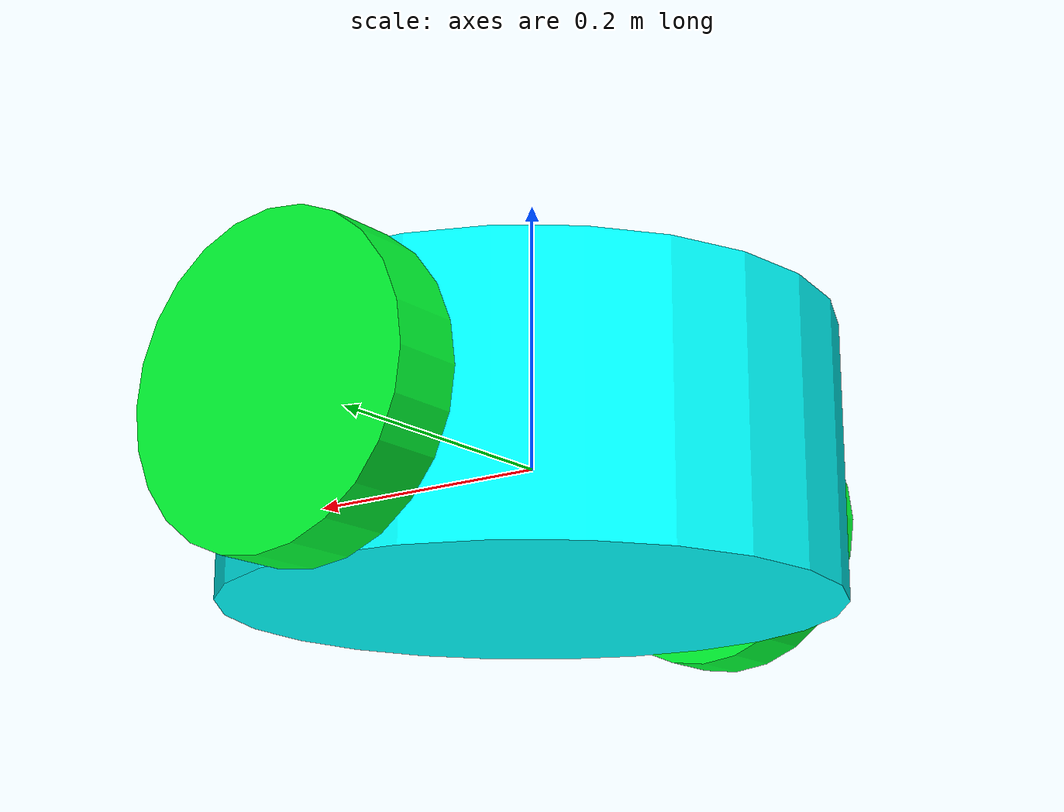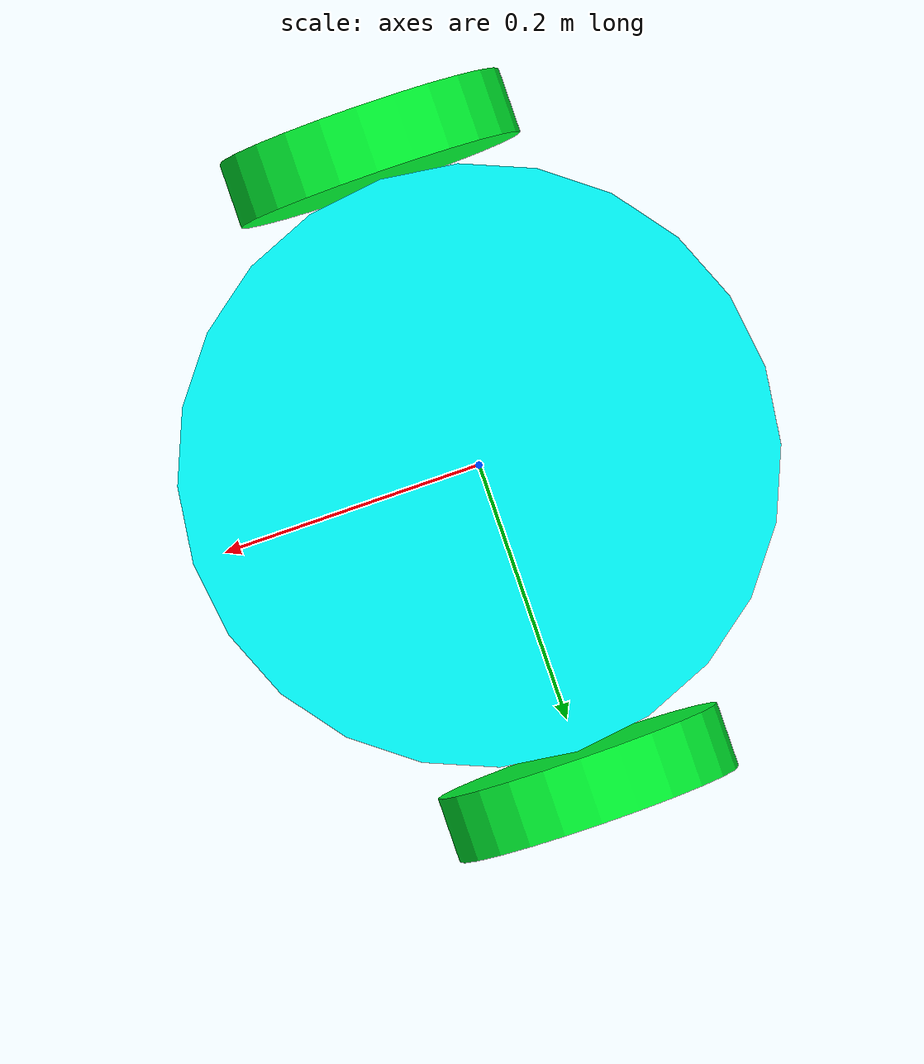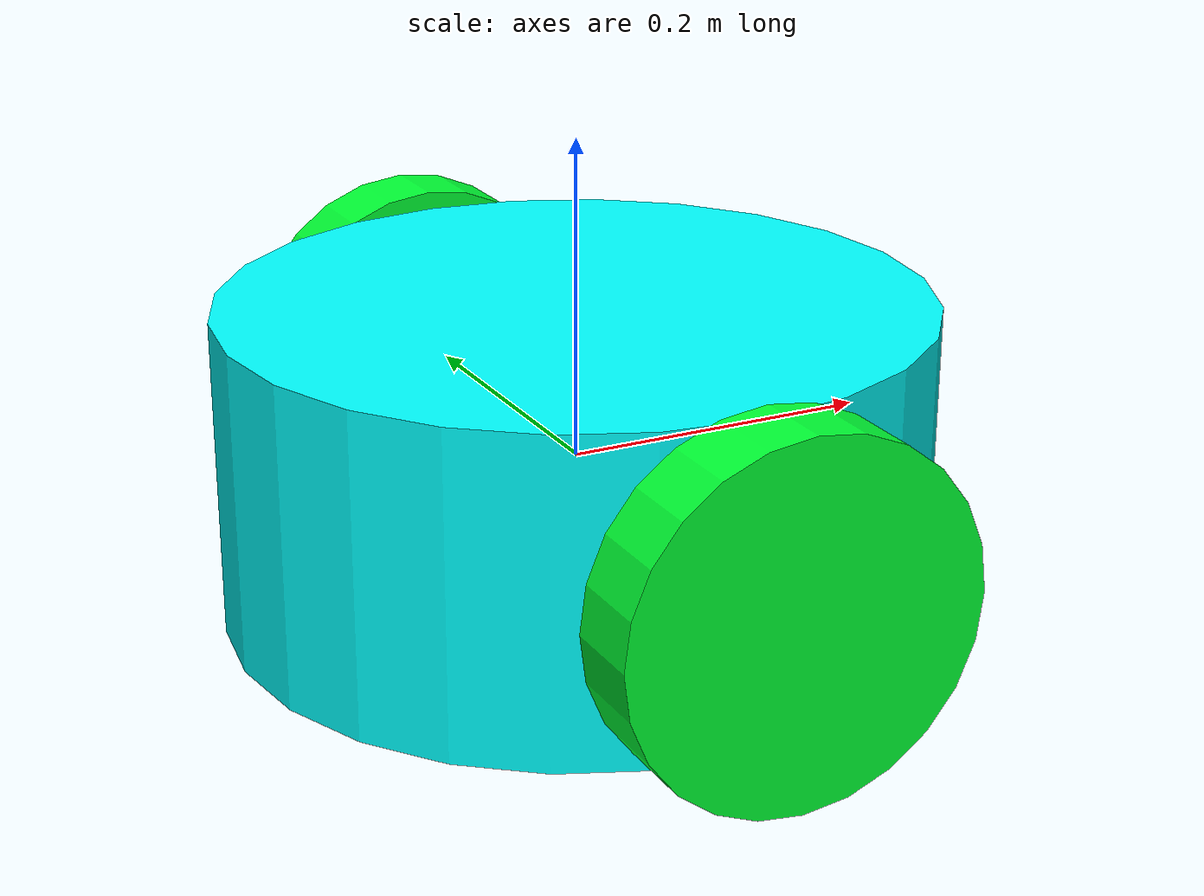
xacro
<?xml version="1.0" ?>
<robot name="robleo"
  xmlns:xacro="http://ros.org/wiki/xacro">

  <link name="base_link">
    <visual>
      <origin xyz="0 0 0" rpy="0 0 0" />
      <geometry>
        <cylinder radius="0.22" length="0.20"/>
      </geometry>
      <material name="Cyan">
        <color rgba="0 1.0 1.0 1.0"/>
      </material>
    </visual>

    <collision>
      <origin xyz="0 0 0" rpy="0 0 0" />
      <geometry>
        <cylinder radius="0.22" length="0.20"/>
      </geometry>
    </collision>

    <inertial>
      <origin xyz="0 0 0.10" rpy="0 0 0"/>
      <mass value="8.2573504e-01"/>
      <inertia ixx="2.2124416e-03" ixy="-1.2294101e-05" ixz="3.4938785e-05" iyy="2.1193702e-03" iyz="-5.0120904e-06" izz="2.0064271e-03" />
    </inertial>
  </link>

  <joint name="wheel_left_joint" type="continuous">
    <parent link="base_link"/>
    <child link="wheel_left_link"/>
    <origin xyz="0.0 0.25 0.0" rpy="-1.57 0 0"/>
    <axis xyz="0 0 1"/>
  </joint>

  <link name="wheel_left_link">
    <visual>
      <origin xyz="0 0 0" rpy="0 0 0" />
      <geometry>
        <cylinder radius="0.11" length="0.05"/>
      </geometry>
      <material name="Green">
        <color rgba="0 1.0 0.2 1.0"/>
      </material>
    </visual>

    <collision>
      <origin xyz="0 0 0" rpy="0 0 0"/>
      <geometry>
        <cylinder radius="0.11" length="0.05"/>
      </geometry>
    </collision>

    <inertial>
      <origin xyz="0 0 0" rpy="0 0 0"/>
      <mass value="2.8498940e-02" />
      <inertia ixx="1.1175580e-05" ixy="-4.2369783e-11" ixz="-5.9381719e-09" iyy="1.1192413e-05" iyz="-1.4400107e-11" izz="2.0712558e-05" />
    </inertial>
  </link>

  <joint name="wheel_right_joint" type="continuous">
    <parent link="base_link"/>
    <child link="wheel_right_link"/>
    <origin xyz="0.0 -0.25 0.0" rpy="-1.57 0 0"/>
    <axis xyz="0 0 1"/>
  </joint>

  <link name="wheel_right_link">
    <visual>
      <origin xyz="0 0 0" rpy="0 0 0"/>
      <geometry>
        <cylinder radius="0.11" length="0.05"/>
      </geometry>
      <material name="Green">
        <color rgba="0 1.0 0.2 1.0"/>
      </material>
    </visual>

    <collision>
      <origin xyz="0 0 0" rpy="0 0 0"/>
      <geometry>
        <cylinder radius="0.11" length="0.05"/>
      </geometry>
    </collision>

    <inertial>
      <origin xyz="0 0 0" rpy="0 0 0"/>
      <mass value="2.8498940e-02" />
      <inertia ixx="1.1175580e-05" ixy="-4.2369783e-11" ixz="-5.9381719e-09" iyy="1.1192413e-05" iyz="-1.4400107e-11" izz="2.0712558e-05" />
    </inertial>
  </link>

</robot>
